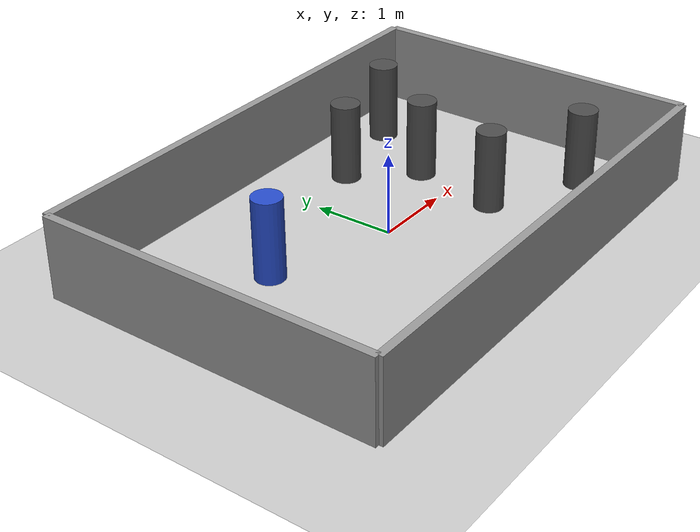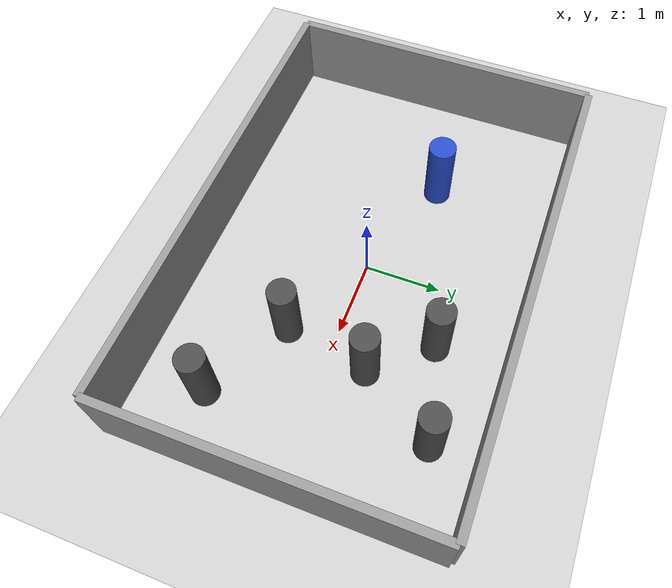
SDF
<?xml version="1.0" ?>
<sdf version="1.6">
  <world name="mixed_world">
    <physics type="ode">
      <real_time_update_rate>0.0</real_time_update_rate>
      <max_step_size>0.001</max_step_size>
      <real_time_factor>1.0</real_time_factor>
    </physics>
    <include><uri>model://sun</uri></include>
    <include><uri>model://ground_plane</uri></include>

    <!-- Bounding walls 6m x 4m -->
    <model name="wall_north"><static>true</static><pose>0 2.1 0.5 0 0 0</pose>
      <link name="link"><collision name="col"><geometry><box><size>6.2 0.1 1.0</size></box></geometry></collision>
      <visual name="vis"><geometry><box><size>6.2 0.1 1.0</size></box></geometry><material><script><name>Gazebo/Grey</name></script></material></visual></link></model>
    <model name="wall_south"><static>true</static><pose>0 -2.1 0.5 0 0 0</pose>
      <link name="link"><collision name="col"><geometry><box><size>6.2 0.1 1.0</size></box></geometry></collision>
      <visual name="vis"><geometry><box><size>6.2 0.1 1.0</size></box></geometry><material><script><name>Gazebo/Grey</name></script></material></visual></link></model>
    <model name="wall_east"><static>true</static><pose>3.1 0 0.5 0 0 1.5708</pose>
      <link name="link"><collision name="col"><geometry><box><size>4.2 0.1 1.0</size></box></geometry></collision>
      <visual name="vis"><geometry><box><size>4.2 0.1 1.0</size></box></geometry><material><script><name>Gazebo/Grey</name></script></material></visual></link></model>
    <model name="wall_west"><static>true</static><pose>-3.1 0 0.5 0 0 1.5708</pose>
      <link name="link"><collision name="col"><geometry><box><size>4.2 0.1 1.0</size></box></geometry></collision>
      <visual name="vis"><geometry><box><size>4.2 0.1 1.0</size></box></geometry><material><script><name>Gazebo/Grey</name></script></material></visual></link></model>

    <!-- LEFT half — sparse (x < 0) -->
    <model name="obs_sparse_0"><static>true</static><pose>-1.5 0.5 0.5 0 0 0</pose>
      <link name="link"><collision name="col"><geometry><cylinder><radius>0.18</radius><length>1.0</length></cylinder></geometry></collision>
      <visual name="vis"><geometry><cylinder><radius>0.18</radius><length>1.0</length></cylinder></geometry><material><script><name>Gazebo/Blue</name></script></material></visual></link></model>

    <!-- RIGHT half — dense (x > 0) -->
    <model name="obs_dense_0"><static>true</static><pose>0.8 1.2 0.5 0 0 0</pose>
      <link name="link"><collision name="col"><geometry><cylinder><radius>0.18</radius><length>1.0</length></cylinder></geometry></collision>
      <visual name="vis"><geometry><cylinder><radius>0.18</radius><length>1.0</length></cylinder></geometry><material><script><name>Gazebo/DarkGrey</name></script></material></visual></link></model>
    <model name="obs_dense_1"><static>true</static><pose>1.4 0.5 0.5 0 0 0</pose>
      <link name="link"><collision name="col"><geometry><cylinder><radius>0.18</radius><length>1.0</length></cylinder></geometry></collision>
      <visual name="vis"><geometry><cylinder><radius>0.18</radius><length>1.0</length></cylinder></geometry><material><script><name>Gazebo/DarkGrey</name></script></material></visual></link></model>
    <model name="obs_dense_2"><static>true</static><pose>2.0 1.5 0.5 0 0 0</pose>
      <link name="link"><collision name="col"><geometry><cylinder><radius>0.18</radius><length>1.0</length></cylinder></geometry></collision>
      <visual name="vis"><geometry><cylinder><radius>0.18</radius><length>1.0</length></cylinder></geometry><material><script><name>Gazebo/DarkGrey</name></script></material></visual></link></model>
    <model name="obs_dense_3"><static>true</static><pose>1.2 -0.6 0.5 0 0 0</pose>
      <link name="link"><collision name="col"><geometry><cylinder><radius>0.18</radius><length>1.0</length></cylinder></geometry></collision>
      <visual name="vis"><geometry><cylinder><radius>0.18</radius><length>1.0</length></cylinder></geometry><material><script><name>Gazebo/DarkGrey</name></script></material></visual></link></model>
    <model name="obs_dense_4"><static>true</static><pose>2.3 -1.2 0.5 0 0 0</pose>
      <link name="link"><collision name="col"><geometry><cylinder><radius>0.18</radius><length>1.0</length></cylinder></geometry></collision>
      <visual name="vis"><geometry><cylinder><radius>0.18</radius><length>1.0</length></cylinder></geometry><material><script><name>Gazebo/DarkGrey</name></script></material></visual></link></model>

    <gui fullscreen="0"><camera name="user_camera"><pose>0 0 10 0 1.5708 0</pose></camera></gui>
  </world>
</sdf>
